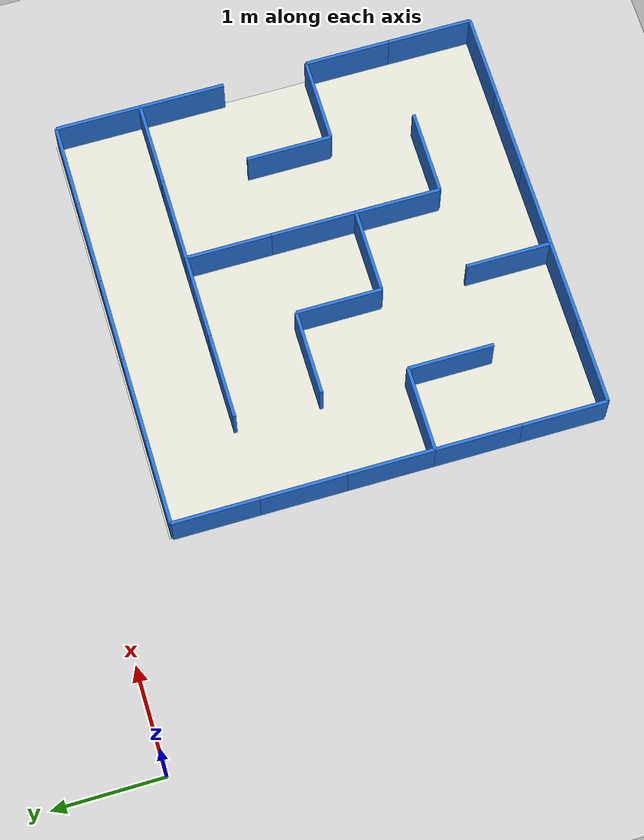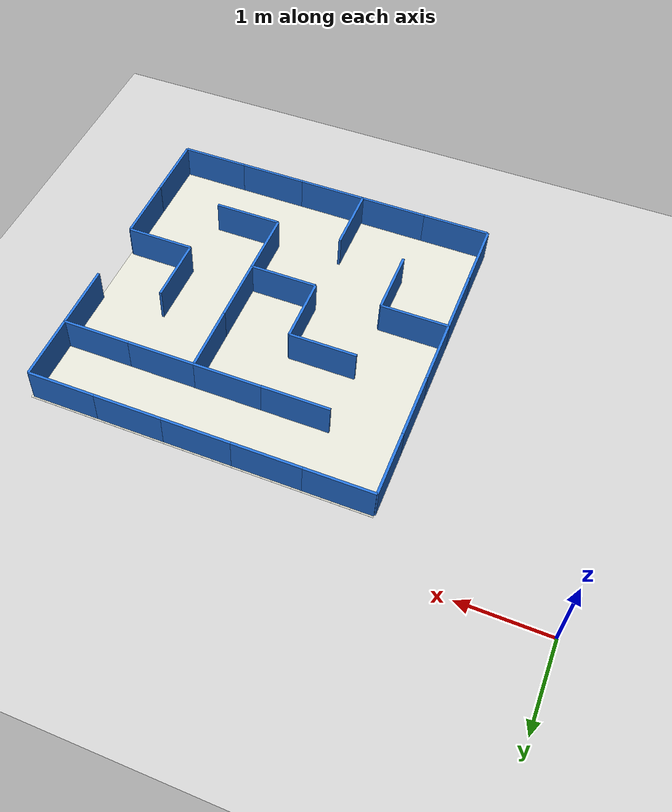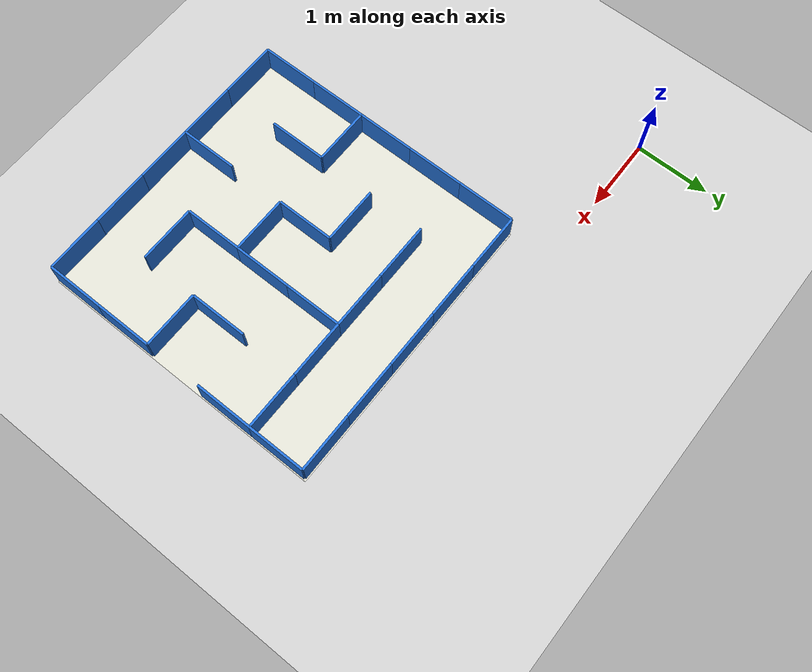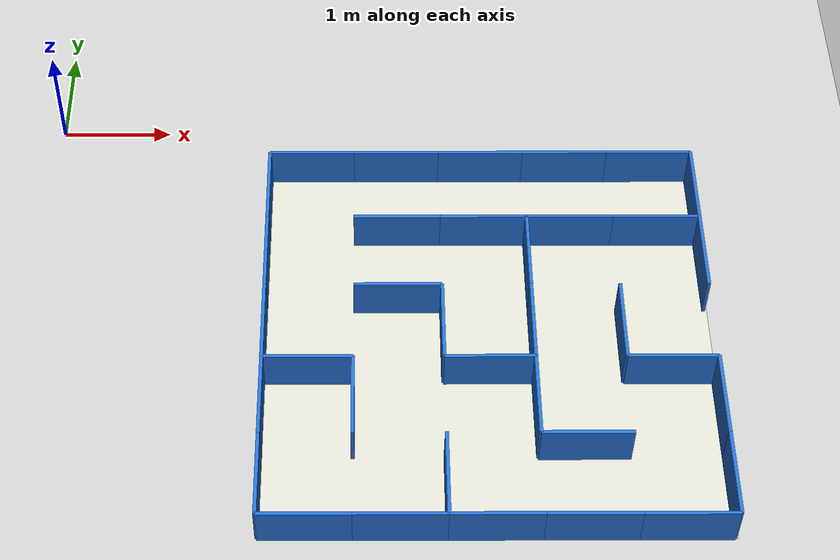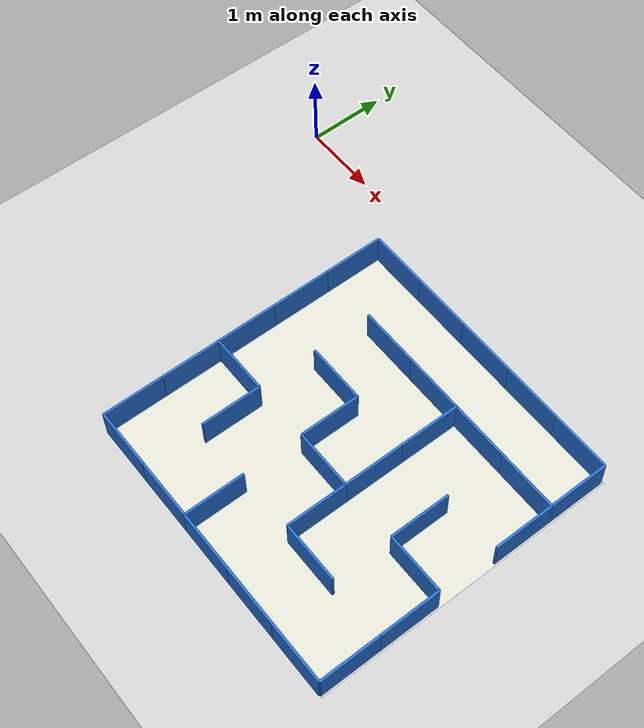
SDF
<?xml version="1.0" ?>
<sdf version="1.10">
<world name="nhom8_maze75">
  <physics name="1ms" type="ignored">
    <max_step_size>0.001</max_step_size>
    <real_time_factor>1.0</real_time_factor>
  </physics>
  <plugin filename="gz-sim-physics-system"   name="gz::sim::systems::Physics"/>
  <plugin filename="gz-sim-user-commands-system" name="gz::sim::systems::UserCommands"/>
  <plugin filename="gz-sim-scene-broadcaster-system" name="gz::sim::systems::SceneBroadcaster"/>
  <plugin filename="gz-sim-sensors-system" name="gz::sim::systems::Sensors">
    <render_engine>ogre2</render_engine>
  </plugin>

  <light type="directional" name="sun">
    <cast_shadows>true</cast_shadows>
    <pose>0 0 10 0 0 0</pose>
    <diffuse>1 1 1 1</diffuse>
    <specular>0.5 0.5 0.5 1</specular>
    <attenuation><range>1000</range><constant>0.9</constant>
      <linear>0.01</linear><quadratic>0.001</quadratic></attenuation>
    <direction>-0.5 0.1 -0.9</direction>
  </light>

  <model name="ground_plane">
    <static>true</static>
    <link name="link">
      <collision name="collision">
        <geometry><plane><normal>0 0 1</normal><size>50 50</size></plane></geometry>
        <surface><friction><ode><mu>40</mu></ode></friction></surface>
      </collision>
      <visual name="visual">
        <geometry><plane><normal>0 0 1</normal><size>50 50</size></plane></geometry>
        <material>
          <ambient>0.8 0.8 0.8 1</ambient><diffuse>0.8 0.8 0.8 1</diffuse>
          <specular>0.8 0.8 0.8 1</specular>
        </material>
      </visual>
    </link>
  </model>

  <!--  MÊ CUNG 5×5  ô 0.75m×0.75m (mở rộng từ 0.50m)          -->
  <!--  Biên kín trừ CỬA RA: biên Đông, hàng 2        -->
  <!--  Start (col 0, row 2): world (2.405, -2.535)          -->
  <!--  Exit: x = 5.90, y ∈ [-2.940, -2.190]    -->
  <!--  wx_i_j: tường dọc (world-Y) trên lưới x = i            -->
  <!--  wy_j_i: tường ngang (world-X) trên lưới y = j          -->

    <model name="wx_0_0">
      <static>true</static>
      <pose>2.0000 -4.1100 0.2000 0 0 0</pose>
      <link name="link">
        <collision name="col">
          <geometry><box><size>0.0300 0.7800 0.4000</size></box></geometry>
        </collision>
        <visual name="vis">
          <geometry><box><size>0.0300 0.7800 0.4000</size></box></geometry>
          <material><ambient>0.15 0.45 0.85 1</ambient><diffuse>0.15 0.45 0.85 1</diffuse></material>
        </visual>
      </link>
    </model>

    <model name="wx_0_1">
      <static>true</static>
      <pose>2.0000 -3.3300 0.2000 0 0 0</pose>
      <link name="link">
        <collision name="col">
          <geometry><box><size>0.0300 0.7800 0.4000</size></box></geometry>
        </collision>
        <visual name="vis">
          <geometry><box><size>0.0300 0.7800 0.4000</size></box></geometry>
          <material><ambient>0.15 0.45 0.85 1</ambient><diffuse>0.15 0.45 0.85 1</diffuse></material>
        </visual>
      </link>
    </model>

    <model name="wx_0_2">
      <static>true</static>
      <pose>2.0000 -2.5500 0.2000 0 0 0</pose>
      <link name="link">
        <collision name="col">
          <geometry><box><size>0.0300 0.7800 0.4000</size></box></geometry>
        </collision>
        <visual name="vis">
          <geometry><box><size>0.0300 0.7800 0.4000</size></box></geometry>
          <material><ambient>0.15 0.45 0.85 1</ambient><diffuse>0.15 0.45 0.85 1</diffuse></material>
        </visual>
      </link>
    </model>

    <model name="wx_0_3">
      <static>true</static>
      <pose>2.0000 -1.7700 0.2000 0 0 0</pose>
      <link name="link">
        <collision name="col">
          <geometry><box><size>0.0300 0.7800 0.4000</size></box></geometry>
        </collision>
        <visual name="vis">
          <geometry><box><size>0.0300 0.7800 0.4000</size></box></geometry>
          <material><ambient>0.15 0.45 0.85 1</ambient><diffuse>0.15 0.45 0.85 1</diffuse></material>
        </visual>
      </link>
    </model>

    <model name="wx_0_4">
      <static>true</static>
      <pose>2.0000 -0.9900 0.2000 0 0 0</pose>
      <link name="link">
        <collision name="col">
          <geometry><box><size>0.0300 0.7800 0.4000</size></box></geometry>
        </collision>
        <visual name="vis">
          <geometry><box><size>0.0300 0.7800 0.4000</size></box></geometry>
          <material><ambient>0.15 0.45 0.85 1</ambient><diffuse>0.15 0.45 0.85 1</diffuse></material>
        </visual>
      </link>
    </model>

    <model name="wx_1_1">
      <static>true</static>
      <pose>2.7800 -3.3300 0.2000 0 0 0</pose>
      <link name="link">
        <collision name="col">
          <geometry><box><size>0.0300 0.7800 0.4000</size></box></geometry>
        </collision>
        <visual name="vis">
          <geometry><box><size>0.0300 0.7800 0.4000</size></box></geometry>
          <material><ambient>0.15 0.45 0.85 1</ambient><diffuse>0.15 0.45 0.85 1</diffuse></material>
        </visual>
      </link>
    </model>

    <model name="wx_2_0">
      <static>true</static>
      <pose>3.5600 -4.1100 0.2000 0 0 0</pose>
      <link name="link">
        <collision name="col">
          <geometry><box><size>0.0300 0.7800 0.4000</size></box></geometry>
        </collision>
        <visual name="vis">
          <geometry><box><size>0.0300 0.7800 0.4000</size></box></geometry>
          <material><ambient>0.15 0.45 0.85 1</ambient><diffuse>0.15 0.45 0.85 1</diffuse></material>
        </visual>
      </link>
    </model>

    <model name="wx_2_2">
      <static>true</static>
      <pose>3.5600 -2.5500 0.2000 0 0 0</pose>
      <link name="link">
        <collision name="col">
          <geometry><box><size>0.0300 0.7800 0.4000</size></box></geometry>
        </collision>
        <visual name="vis">
          <geometry><box><size>0.0300 0.7800 0.4000</size></box></geometry>
          <material><ambient>0.15 0.45 0.85 1</ambient><diffuse>0.15 0.45 0.85 1</diffuse></material>
        </visual>
      </link>
    </model>

    <model name="wx_3_1">
      <static>true</static>
      <pose>4.3400 -3.3300 0.2000 0 0 0</pose>
      <link name="link">
        <collision name="col">
          <geometry><box><size>0.0300 0.7800 0.4000</size></box></geometry>
        </collision>
        <visual name="vis">
          <geometry><box><size>0.0300 0.7800 0.4000</size></box></geometry>
          <material><ambient>0.15 0.45 0.85 1</ambient><diffuse>0.15 0.45 0.85 1</diffuse></material>
        </visual>
      </link>
    </model>

    <model name="wx_3_2">
      <static>true</static>
      <pose>4.3400 -2.5500 0.2000 0 0 0</pose>
      <link name="link">
        <collision name="col">
          <geometry><box><size>0.0300 0.7800 0.4000</size></box></geometry>
        </collision>
        <visual name="vis">
          <geometry><box><size>0.0300 0.7800 0.4000</size></box></geometry>
          <material><ambient>0.15 0.45 0.85 1</ambient><diffuse>0.15 0.45 0.85 1</diffuse></material>
        </visual>
      </link>
    </model>

    <model name="wx_3_3">
      <static>true</static>
      <pose>4.3400 -1.7700 0.2000 0 0 0</pose>
      <link name="link">
        <collision name="col">
          <geometry><box><size>0.0300 0.7800 0.4000</size></box></geometry>
        </collision>
        <visual name="vis">
          <geometry><box><size>0.0300 0.7800 0.4000</size></box></geometry>
          <material><ambient>0.15 0.45 0.85 1</ambient><diffuse>0.15 0.45 0.85 1</diffuse></material>
        </visual>
      </link>
    </model>

    <model name="wx_4_2">
      <static>true</static>
      <pose>5.1200 -2.5500 0.2000 0 0 0</pose>
      <link name="link">
        <collision name="col">
          <geometry><box><size>0.0300 0.7800 0.4000</size></box></geometry>
        </collision>
        <visual name="vis">
          <geometry><box><size>0.0300 0.7800 0.4000</size></box></geometry>
          <material><ambient>0.15 0.45 0.85 1</ambient><diffuse>0.15 0.45 0.85 1</diffuse></material>
        </visual>
      </link>
    </model>

    <model name="wx_5_0">
      <static>true</static>
      <pose>5.9000 -4.1100 0.2000 0 0 0</pose>
      <link name="link">
        <collision name="col">
          <geometry><box><size>0.0300 0.7800 0.4000</size></box></geometry>
        </collision>
        <visual name="vis">
          <geometry><box><size>0.0300 0.7800 0.4000</size></box></geometry>
          <material><ambient>0.15 0.45 0.85 1</ambient><diffuse>0.15 0.45 0.85 1</diffuse></material>
        </visual>
      </link>
    </model>

    <model name="wx_5_1">
      <static>true</static>
      <pose>5.9000 -3.3300 0.2000 0 0 0</pose>
      <link name="link">
        <collision name="col">
          <geometry><box><size>0.0300 0.7800 0.4000</size></box></geometry>
        </collision>
        <visual name="vis">
          <geometry><box><size>0.0300 0.7800 0.4000</size></box></geometry>
          <material><ambient>0.15 0.45 0.85 1</ambient><diffuse>0.15 0.45 0.85 1</diffuse></material>
        </visual>
      </link>
    </model>

    <model name="wx_5_3">
      <static>true</static>
      <pose>5.9000 -1.7700 0.2000 0 0 0</pose>
      <link name="link">
        <collision name="col">
          <geometry><box><size>0.0300 0.7800 0.4000</size></box></geometry>
        </collision>
        <visual name="vis">
          <geometry><box><size>0.0300 0.7800 0.4000</size></box></geometry>
          <material><ambient>0.15 0.45 0.85 1</ambient><diffuse>0.15 0.45 0.85 1</diffuse></material>
        </visual>
      </link>
    </model>

    <model name="wx_5_4">
      <static>true</static>
      <pose>5.9000 -0.9900 0.2000 0 0 0</pose>
      <link name="link">
        <collision name="col">
          <geometry><box><size>0.0300 0.7800 0.4000</size></box></geometry>
        </collision>
        <visual name="vis">
          <geometry><box><size>0.0300 0.7800 0.4000</size></box></geometry>
          <material><ambient>0.15 0.45 0.85 1</ambient><diffuse>0.15 0.45 0.85 1</diffuse></material>
        </visual>
      </link>
    </model>

    <model name="wy_0_0">
      <static>true</static>
      <pose>2.3900 -4.5000 0.2000 0 0 0</pose>
      <link name="link">
        <collision name="col">
          <geometry><box><size>0.7800 0.0300 0.4000</size></box></geometry>
        </collision>
        <visual name="vis">
          <geometry><box><size>0.7800 0.0300 0.4000</size></box></geometry>
          <material><ambient>0.15 0.45 0.85 1</ambient><diffuse>0.15 0.45 0.85 1</diffuse></material>
        </visual>
      </link>
    </model>

    <model name="wy_0_1">
      <static>true</static>
      <pose>3.1700 -4.5000 0.2000 0 0 0</pose>
      <link name="link">
        <collision name="col">
          <geometry><box><size>0.7800 0.0300 0.4000</size></box></geometry>
        </collision>
        <visual name="vis">
          <geometry><box><size>0.7800 0.0300 0.4000</size></box></geometry>
          <material><ambient>0.15 0.45 0.85 1</ambient><diffuse>0.15 0.45 0.85 1</diffuse></material>
        </visual>
      </link>
    </model>

    <model name="wy_0_2">
      <static>true</static>
      <pose>3.9500 -4.5000 0.2000 0 0 0</pose>
      <link name="link">
        <collision name="col">
          <geometry><box><size>0.7800 0.0300 0.4000</size></box></geometry>
        </collision>
        <visual name="vis">
          <geometry><box><size>0.7800 0.0300 0.4000</size></box></geometry>
          <material><ambient>0.15 0.45 0.85 1</ambient><diffuse>0.15 0.45 0.85 1</diffuse></material>
        </visual>
      </link>
    </model>

    <model name="wy_0_3">
      <static>true</static>
      <pose>4.7300 -4.5000 0.2000 0 0 0</pose>
      <link name="link">
        <collision name="col">
          <geometry><box><size>0.7800 0.0300 0.4000</size></box></geometry>
        </collision>
        <visual name="vis">
          <geometry><box><size>0.7800 0.0300 0.4000</size></box></geometry>
          <material><ambient>0.15 0.45 0.85 1</ambient><diffuse>0.15 0.45 0.85 1</diffuse></material>
        </visual>
      </link>
    </model>

    <model name="wy_0_4">
      <static>true</static>
      <pose>5.5100 -4.5000 0.2000 0 0 0</pose>
      <link name="link">
        <collision name="col">
          <geometry><box><size>0.7800 0.0300 0.4000</size></box></geometry>
        </collision>
        <visual name="vis">
          <geometry><box><size>0.7800 0.0300 0.4000</size></box></geometry>
          <material><ambient>0.15 0.45 0.85 1</ambient><diffuse>0.15 0.45 0.85 1</diffuse></material>
        </visual>
      </link>
    </model>

    <model name="wy_1_3">
      <static>true</static>
      <pose>4.7300 -3.7200 0.2000 0 0 0</pose>
      <link name="link">
        <collision name="col">
          <geometry><box><size>0.7800 0.0300 0.4000</size></box></geometry>
        </collision>
        <visual name="vis">
          <geometry><box><size>0.7800 0.0300 0.4000</size></box></geometry>
          <material><ambient>0.15 0.45 0.85 1</ambient><diffuse>0.15 0.45 0.85 1</diffuse></material>
        </visual>
      </link>
    </model>

    <model name="wy_2_0">
      <static>true</static>
      <pose>2.3900 -2.9400 0.2000 0 0 0</pose>
      <link name="link">
        <collision name="col">
          <geometry><box><size>0.7800 0.0300 0.4000</size></box></geometry>
        </collision>
        <visual name="vis">
          <geometry><box><size>0.7800 0.0300 0.4000</size></box></geometry>
          <material><ambient>0.15 0.45 0.85 1</ambient><diffuse>0.15 0.45 0.85 1</diffuse></material>
        </visual>
      </link>
    </model>

    <model name="wy_2_2">
      <static>true</static>
      <pose>3.9500 -2.9400 0.2000 0 0 0</pose>
      <link name="link">
        <collision name="col">
          <geometry><box><size>0.7800 0.0300 0.4000</size></box></geometry>
        </collision>
        <visual name="vis">
          <geometry><box><size>0.7800 0.0300 0.4000</size></box></geometry>
          <material><ambient>0.15 0.45 0.85 1</ambient><diffuse>0.15 0.45 0.85 1</diffuse></material>
        </visual>
      </link>
    </model>

    <model name="wy_2_4">
      <static>true</static>
      <pose>5.5100 -2.9400 0.2000 0 0 0</pose>
      <link name="link">
        <collision name="col">
          <geometry><box><size>0.7800 0.0300 0.4000</size></box></geometry>
        </collision>
        <visual name="vis">
          <geometry><box><size>0.7800 0.0300 0.4000</size></box></geometry>
          <material><ambient>0.15 0.45 0.85 1</ambient><diffuse>0.15 0.45 0.85 1</diffuse></material>
        </visual>
      </link>
    </model>

    <model name="wy_3_1">
      <static>true</static>
      <pose>3.1700 -2.1600 0.2000 0 0 0</pose>
      <link name="link">
        <collision name="col">
          <geometry><box><size>0.7800 0.0300 0.4000</size></box></geometry>
        </collision>
        <visual name="vis">
          <geometry><box><size>0.7800 0.0300 0.4000</size></box></geometry>
          <material><ambient>0.15 0.45 0.85 1</ambient><diffuse>0.15 0.45 0.85 1</diffuse></material>
        </visual>
      </link>
    </model>

    <model name="wy_4_1">
      <static>true</static>
      <pose>3.1700 -1.3800 0.2000 0 0 0</pose>
      <link name="link">
        <collision name="col">
          <geometry><box><size>0.7800 0.0300 0.4000</size></box></geometry>
        </collision>
        <visual name="vis">
          <geometry><box><size>0.7800 0.0300 0.4000</size></box></geometry>
          <material><ambient>0.15 0.45 0.85 1</ambient><diffuse>0.15 0.45 0.85 1</diffuse></material>
        </visual>
      </link>
    </model>

    <model name="wy_4_2">
      <static>true</static>
      <pose>3.9500 -1.3800 0.2000 0 0 0</pose>
      <link name="link">
        <collision name="col">
          <geometry><box><size>0.7800 0.0300 0.4000</size></box></geometry>
        </collision>
        <visual name="vis">
          <geometry><box><size>0.7800 0.0300 0.4000</size></box></geometry>
          <material><ambient>0.15 0.45 0.85 1</ambient><diffuse>0.15 0.45 0.85 1</diffuse></material>
        </visual>
      </link>
    </model>

    <model name="wy_4_3">
      <static>true</static>
      <pose>4.7300 -1.3800 0.2000 0 0 0</pose>
      <link name="link">
        <collision name="col">
          <geometry><box><size>0.7800 0.0300 0.4000</size></box></geometry>
        </collision>
        <visual name="vis">
          <geometry><box><size>0.7800 0.0300 0.4000</size></box></geometry>
          <material><ambient>0.15 0.45 0.85 1</ambient><diffuse>0.15 0.45 0.85 1</diffuse></material>
        </visual>
      </link>
    </model>

    <model name="wy_4_4">
      <static>true</static>
      <pose>5.5100 -1.3800 0.2000 0 0 0</pose>
      <link name="link">
        <collision name="col">
          <geometry><box><size>0.7800 0.0300 0.4000</size></box></geometry>
        </collision>
        <visual name="vis">
          <geometry><box><size>0.7800 0.0300 0.4000</size></box></geometry>
          <material><ambient>0.15 0.45 0.85 1</ambient><diffuse>0.15 0.45 0.85 1</diffuse></material>
        </visual>
      </link>
    </model>

    <model name="wy_5_0">
      <static>true</static>
      <pose>2.3900 -0.6000 0.2000 0 0 0</pose>
      <link name="link">
        <collision name="col">
          <geometry><box><size>0.7800 0.0300 0.4000</size></box></geometry>
        </collision>
        <visual name="vis">
          <geometry><box><size>0.7800 0.0300 0.4000</size></box></geometry>
          <material><ambient>0.15 0.45 0.85 1</ambient><diffuse>0.15 0.45 0.85 1</diffuse></material>
        </visual>
      </link>
    </model>

    <model name="wy_5_1">
      <static>true</static>
      <pose>3.1700 -0.6000 0.2000 0 0 0</pose>
      <link name="link">
        <collision name="col">
          <geometry><box><size>0.7800 0.0300 0.4000</size></box></geometry>
        </collision>
        <visual name="vis">
          <geometry><box><size>0.7800 0.0300 0.4000</size></box></geometry>
          <material><ambient>0.15 0.45 0.85 1</ambient><diffuse>0.15 0.45 0.85 1</diffuse></material>
        </visual>
      </link>
    </model>

    <model name="wy_5_2">
      <static>true</static>
      <pose>3.9500 -0.6000 0.2000 0 0 0</pose>
      <link name="link">
        <collision name="col">
          <geometry><box><size>0.7800 0.0300 0.4000</size></box></geometry>
        </collision>
        <visual name="vis">
          <geometry><box><size>0.7800 0.0300 0.4000</size></box></geometry>
          <material><ambient>0.15 0.45 0.85 1</ambient><diffuse>0.15 0.45 0.85 1</diffuse></material>
        </visual>
      </link>
    </model>

    <model name="wy_5_3">
      <static>true</static>
      <pose>4.7300 -0.6000 0.2000 0 0 0</pose>
      <link name="link">
        <collision name="col">
          <geometry><box><size>0.7800 0.0300 0.4000</size></box></geometry>
        </collision>
        <visual name="vis">
          <geometry><box><size>0.7800 0.0300 0.4000</size></box></geometry>
          <material><ambient>0.15 0.45 0.85 1</ambient><diffuse>0.15 0.45 0.85 1</diffuse></material>
        </visual>
      </link>
    </model>

    <model name="wy_5_4">
      <static>true</static>
      <pose>5.5100 -0.6000 0.2000 0 0 0</pose>
      <link name="link">
        <collision name="col">
          <geometry><box><size>0.7800 0.0300 0.4000</size></box></geometry>
        </collision>
        <visual name="vis">
          <geometry><box><size>0.7800 0.0300 0.4000</size></box></geometry>
          <material><ambient>0.15 0.45 0.85 1</ambient><diffuse>0.15 0.45 0.85 1</diffuse></material>
        </visual>
      </link>
    </model>

    <model name="floor">
      <static>true</static>
      <pose>3.9650 -2.5350 -0.02 0 0 0</pose>
      <link name="link">
        <collision name="col">
          <geometry><box><size>3.93 3.93 0.03</size></box></geometry>
        </collision>
        <visual name="vis">
          <geometry><box><size>3.93 3.93 0.03</size></box></geometry>
          <material><ambient>0.87 0.87 0.82 1</ambient><diffuse>0.87 0.87 0.82 1</diffuse></material>
        </visual>
      </link>
    </model>
</world>
</sdf>
